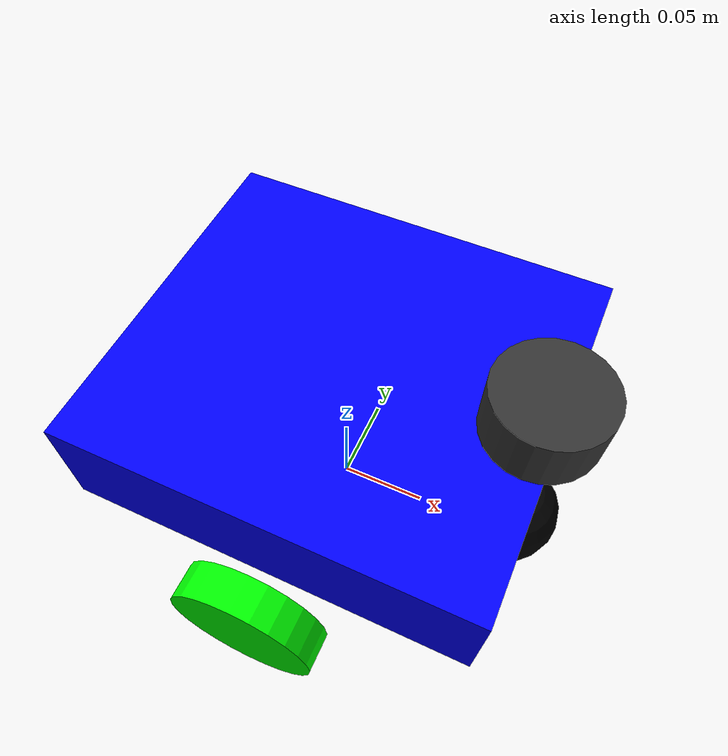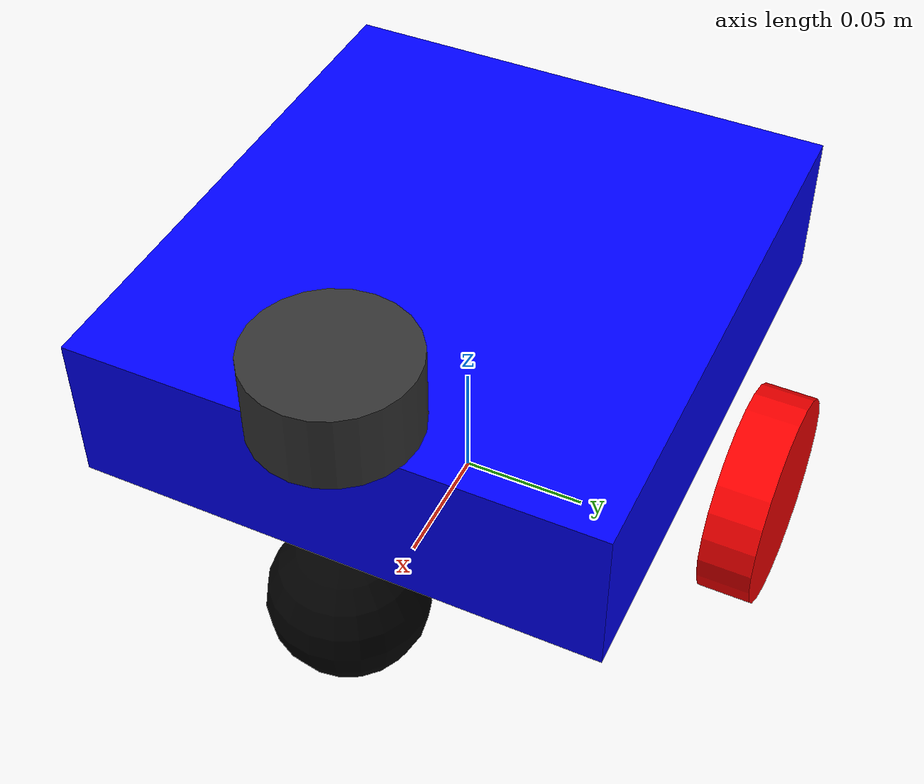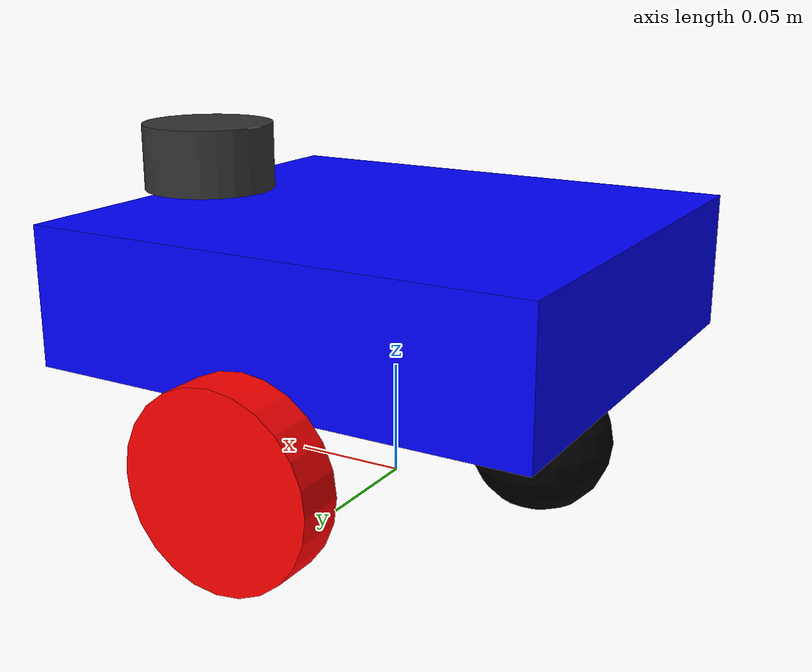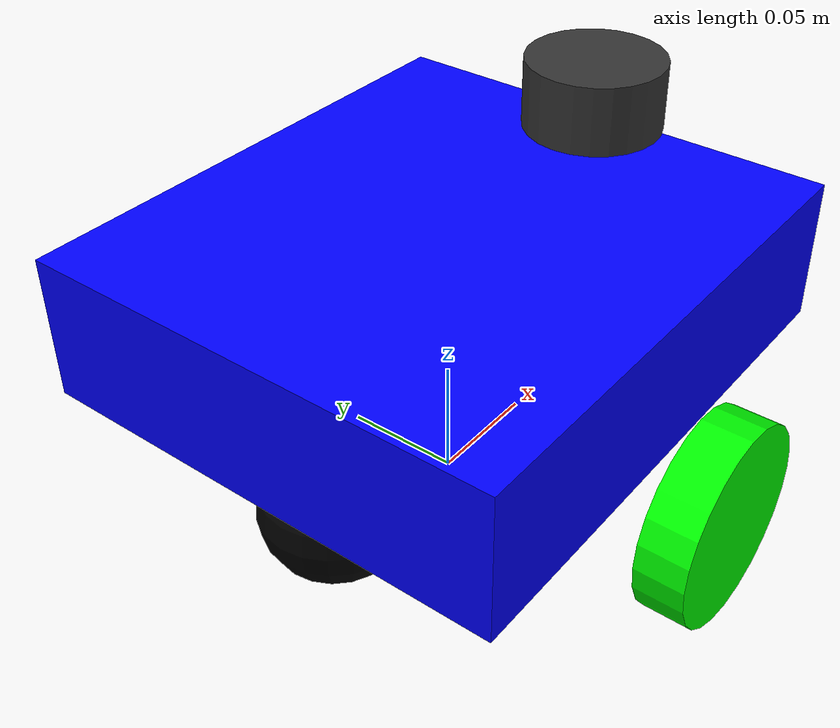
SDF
<sdf version="1.9">
  <model name="simple_robot">
    <pose>0 0 0 0 0 0</pose>
    <static>false</static>

    <!-- ================== CHASSIS ================== -->
    <link name="chassis">
      <!-- Chassis center at z = 0.09, bottom at 0.06 -->
      <pose>0 0 0.09 0 0 0</pose>

      <inertial>
        <mass>3.0</mass>
        <inertia>
          <ixx>0.0125</ixx>
          <iyy>0.025</iyy>
          <izz>0.0325</izz>
        </inertia>
      </inertial>

      <!-- Chassis box: height 0.06 -->
      <collision name="chassis_collision">
        <geometry>
          <box>
            <size>0.22 0.2 0.06</size>
          </box>
        </geometry>
      </collision>

      <visual name="chassis_visual">
        <geometry>
          <box>
            <size>0.22 0.2 0.06</size>
          </box>
        </geometry>
        <material>
          <diffuse>0 0 1 1</diffuse>
        </material>
      </visual>

      <!-- ========= FRONT CASTER (low friction) ========= -->
      <!-- caster center = 0.09 - 0.06 = 0.03; radius 0.03 -> bottom at 0 -->
      <collision name="front_caster_collision">
        <pose>0.10 0 -0.06 0 0 0</pose>
        <geometry>
          <sphere>
            <radius>0.03</radius>
          </sphere>
        </geometry>
        <surface>
          <friction>
            <ode>
              <mu>0.01</mu>
              <mu2>0.01</mu2>
            </ode>
          </friction>
        </surface>
      </collision>

      <visual name="front_caster_visual">
        <pose>0.10 0 -0.06 0 0 0</pose>
        <geometry>
          <sphere>
            <radius>0.03</radius>
          </sphere>
        </geometry>
        <material>
          <diffuse>0 0 0 1</diffuse>
        </material>
      </visual>

      <!-- ========= REAR CASTER (low friction) ========= -->
      <collision name="rear_caster_collision">
        <pose>-0.07 0 -0.06 0 0 0</pose>
        <geometry>
          <sphere>
            <radius>0.03</radius>
          </sphere>
        </geometry>
        <surface>
          <friction>
            <ode>
              <mu>0.01</mu>
              <mu2>0.01</mu2>
            </ode>
          </friction>
        </surface>
      </collision>

      <visual name="rear_caster_visual">
        <pose>-0.07 0 -0.06 0 0 0</pose>
        <geometry>
          <sphere>
            <radius>0.03</radius>
          </sphere>
        </geometry>
        <material>
          <diffuse>0 0 0 1</diffuse>
        </material>
      </visual>

    </link>

    <!-- ================== LEFT WHEEL ================== -->
    <link name="left_wheel">
      <!-- Wheel center at z = 0.04, radius 0.04 -> bottom at 0 -->
      <pose>0 0.12 0.04 0 0 0</pose>

      <inertial>
        <mass>0.2</mass>
        <inertia>
          <ixx>0.0005</ixx>
          <iyy>0.0005</iyy>
          <izz>0.0005</izz>
        </inertia>
      </inertial>

      <collision name="collision">
        <!-- Cylinder axis rotated so local Z becomes Y -->
        <pose>0 0 0 1.5708 0 0</pose>
        <geometry>
          <cylinder>
            <radius>0.04</radius>
            <length>0.02</length>
          </cylinder>
        </geometry>
        <surface>
          <friction>
            <ode>
              <mu>1.0</mu>
              <mu2>1.0</mu2>
            </ode>
          </friction>
        </surface>
      </collision>

      <visual name="visual">
        <pose>0 0 0 1.5708 0 0</pose>
        <geometry>
          <cylinder>
            <radius>0.04</radius>
            <length>0.02</length>
          </cylinder>
        </geometry>
        <material>
          <diffuse>1 0 0 1</diffuse>
        </material>
      </visual>
    </link>

    <joint name="left_wheel_joint" type="revolute">
      <parent>chassis</parent>
      <child>left_wheel</child>
      <axis>
        <xyz>0 1 0</xyz>
        <dynamics>
          <damping>0.1</damping>
        </dynamics>
        <limit>
          <lower>-1e16</lower>
          <upper>1e16</upper>
        </limit>
      </axis>
    </joint>

    <!-- ================== RIGHT WHEEL ================== -->
    <link name="right_wheel">
      <pose>0 -0.12 0.04 0 0 0</pose>

      <inertial>
        <mass>0.2</mass>
        <inertia>
          <ixx>0.0005</ixx>
          <iyy>0.0005</iyy>
          <izz>0.0005</izz>
        </inertia>
      </inertial>

      <collision name="collision">
        <pose>0 0 0 1.5708 0 0</pose>
        <geometry>
          <cylinder>
            <radius>0.04</radius>
            <length>0.02</length>
          </cylinder>
        </geometry>
        <surface>
          <friction>
            <ode>
              <mu>1.0</mu>
              <mu2>1.0</mu2>
            </ode>
          </friction>
        </surface>
      </collision>

      <visual name="visual">
        <pose>0 0 0 1.5708 0 0</pose>
        <geometry>
          <cylinder>
            <radius>0.04</radius>
            <length>0.02</length>
          </cylinder>
        </geometry>
        <material>
          <diffuse>0 1 0 1</diffuse>
        </material>
      </visual>
    </link>

    <joint name="right_wheel_joint" type="revolute">
      <parent>chassis</parent>
      <child>right_wheel</child>
      <axis>
        <xyz>0 1 0</xyz>
        <dynamics>
          <damping>0.1</damping>
        </dynamics>
        <limit>
          <lower>-1e16</lower>
          <upper>1e16</upper>
        </limit>
      </axis>
    </joint>

    <!-- ================== LIDAR ================== -->
    <link name="lidar_link">
      <!-- Chassis top = 0.12; lidar half-length = 0.015 -> center 0.135 -->
      <pose>0.1 0 0.135 0 0 0</pose>

      <inertial>
        <mass>0.1</mass>
        <inertia>
          <ixx>1e-4</ixx>
          <iyy>1e-4</iyy>
          <izz>1e-4</izz>
          <ixy>0.0</ixy>
          <ixz>0.0</ixz>
          <iyz>0.0</iyz>
        </inertia>
      </inertial>

      <visual name="lidar_body_visual">
        <geometry>
          <cylinder>
            <radius>0.03</radius>
            <length>0.03</length>
          </cylinder>
        </geometry>
        <material>
          <diffuse>0.2 0.2 0.2 1</diffuse>
        </material>
      </visual>

      <sensor name="lidar" type="gpu_lidar">
        <always_on>true</always_on>
        <visualize>true</visualize>
        <update_rate>10</update_rate>
        <topic>scan</topic>
        <frame_id>lidar_link</frame_id>
        <lidar>
          <scan>
            <horizontal>
              <samples>360</samples>
              <resolution>1</resolution>
              <min_angle>-1.57</min_angle>
              <max_angle>1.57</max_angle>
            </horizontal>
          </scan>
          <range>
            <min>0.05</min>
            <max>10.0</max>
          </range>
        </lidar>
      </sensor>
    </link>

    <joint name="lidar_joint" type="fixed">
      <parent>chassis</parent>
      <child>lidar_link</child>
    </joint>

    <!-- ================== DIFF DRIVE PLUGIN ================== -->
    <plugin filename="gz-sim-diff-drive-system"
        name="gz::sim::systems::DiffDrive">

  <left_joint>left_wheel_joint</left_joint>
  <right_joint>right_wheel_joint</right_joint>

  <wheel_separation>0.24</wheel_separation>
  <wheel_radius>0.05</wheel_radius>

  <!-- cmd_vel command topic (Gazebo side) -->
  <topic>cmd_vel</topic>

  <!-- Odometry configuration -->
  <odom_topic>odom</odom_topic>                 <!-- Gazebo odom topic name -->
  <odom_frame_id>odom</odom_frame_id>           <!-- world / fixed frame -->
  <robot_base_frame_id>chassis</robot_base_frame_id> <!-- our base link name -->
  <enable_odom_tf>true</enable_odom_tf>         <!-- publish TF inside Gazebo -->
</plugin>

  </model>
</sdf>
